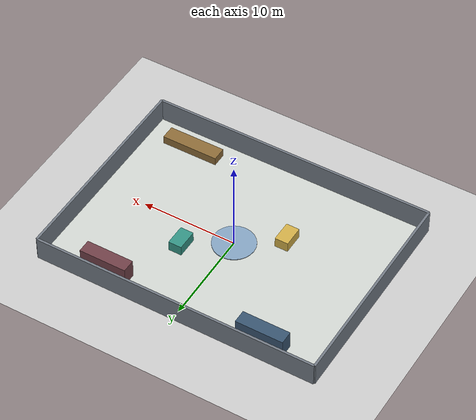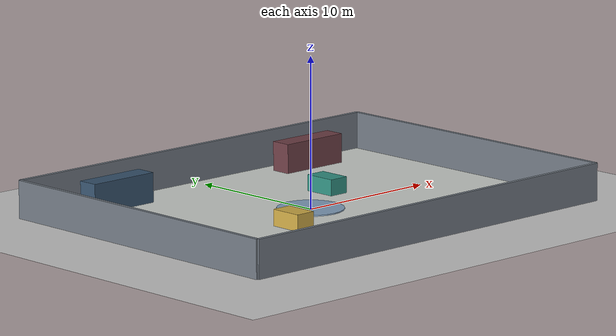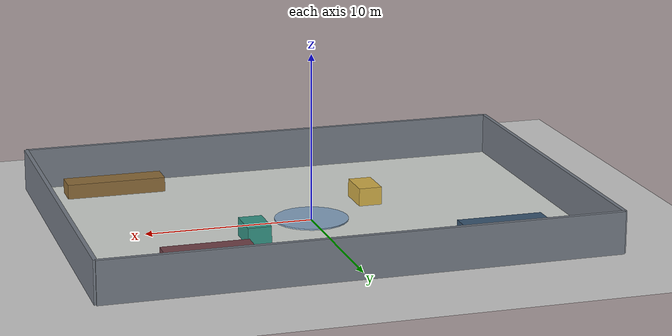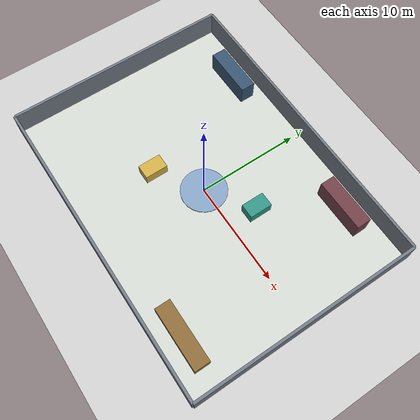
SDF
<?xml version="1.0"?>
<sdf version="1.6">
  <world name="dynamic_nav_mall">
    <include><uri>model://sun</uri></include>
    <include><uri>model://ground_plane</uri></include>
    <scene><ambient>0.58 0.58 0.62 1</ambient><background>0.88 0.9 0.94 1</background></scene>
    <physics type="ode"><max_step_size>0.0025</max_step_size><real_time_update_rate>400</real_time_update_rate></physics>

    <model name="mall_floor">
      <static>true</static>
      <link name="floor">
        <visual name="polished_tile"><geometry><box><size>30 22 0.03</size></box></geometry><material><ambient>0.72 0.74 0.72 1</ambient><diffuse>0.82 0.84 0.82 1</diffuse></material></visual>
        <collision name="collision"><geometry><box><size>30 22 0.03</size></box></geometry></collision>
      </link>
    </model>

    <model name="mall_shell">
      <static>true</static>
      <link name="walls">
        <visual name="north"><pose>0 11 1.25 0 0 0</pose><geometry><box><size>30 0.25 2.5</size></box></geometry><material><diffuse>0.45 0.48 0.52 1</diffuse></material></visual>
        <collision name="north_col"><pose>0 11 1.25 0 0 0</pose><geometry><box><size>30 0.25 2.5</size></box></geometry></collision>
        <visual name="south"><pose>0 -11 1.25 0 0 0</pose><geometry><box><size>30 0.25 2.5</size></box></geometry><material><diffuse>0.45 0.48 0.52 1</diffuse></material></visual>
        <collision name="south_col"><pose>0 -11 1.25 0 0 0</pose><geometry><box><size>30 0.25 2.5</size></box></geometry></collision>
        <visual name="east"><pose>15 0 1.25 0 0 0</pose><geometry><box><size>0.25 22 2.5</size></box></geometry><material><diffuse>0.45 0.48 0.52 1</diffuse></material></visual>
        <collision name="east_col"><pose>15 0 1.25 0 0 0</pose><geometry><box><size>0.25 22 2.5</size></box></geometry></collision>
        <visual name="west"><pose>-15 0 1.25 0 0 0</pose><geometry><box><size>0.25 22 2.5</size></box></geometry><material><diffuse>0.45 0.48 0.52 1</diffuse></material></visual>
        <collision name="west_col"><pose>-15 0 1.25 0 0 0</pose><geometry><box><size>0.25 22 2.5</size></box></geometry></collision>
      </link>
    </model>

    <model name="storefronts_and_clutter">
      <static>true</static>
      <link name="fixtures">
        <visual name="shop_north_west"><pose>-8.5 9.1 1.0 0 0 0</pose><geometry><box><size>5.0 1.4 2.0</size></box></geometry><material><diffuse>0.22 0.33 0.44 1</diffuse></material></visual>
        <collision name="shop_north_west_col"><pose>-8.5 9.1 1.0 0 0 0</pose><geometry><box><size>5.0 1.4 2.0</size></box></geometry></collision>
        <visual name="shop_north_east"><pose>8.5 9.1 1.0 0 0 0</pose><geometry><box><size>5.0 1.4 2.0</size></box></geometry><material><diffuse>0.44 0.25 0.28 1</diffuse></material></visual>
        <collision name="shop_north_east_col"><pose>8.5 9.1 1.0 0 0 0</pose><geometry><box><size>5.0 1.4 2.0</size></box></geometry></collision>
        <visual name="food_court"><pose>10.0 -8.8 0.45 0 0 0</pose><geometry><box><size>6.0 1.5 0.9</size></box></geometry><material><diffuse>0.55 0.42 0.22 1</diffuse></material></visual>
        <collision name="food_court_col"><pose>10.0 -8.8 0.45 0 0 0</pose><geometry><box><size>6.0 1.5 0.9</size></box></geometry></collision>
        <visual name="kiosk_a"><pose>-4.2 -2.8 0.55 0 0 0</pose><geometry><box><size>1.4 2.2 1.1</size></box></geometry><material><diffuse>0.82 0.68 0.28 1</diffuse></material></visual>
        <collision name="kiosk_a_col"><pose>-4.2 -2.8 0.55 0 0 0</pose><geometry><box><size>1.4 2.2 1.1</size></box></geometry></collision>
        <visual name="kiosk_b"><pose>4.2 2.8 0.55 0 0 0</pose><geometry><box><size>1.4 2.2 1.1</size></box></geometry><material><diffuse>0.20 0.58 0.52 1</diffuse></material></visual>
        <collision name="kiosk_b_col"><pose>4.2 2.8 0.55 0 0 0</pose><geometry><box><size>1.4 2.2 1.1</size></box></geometry></collision>
        <visual name="atrium"><pose>0 0 0.08 0 0 0</pose><geometry><cylinder><radius>2.2</radius><length>0.08</length></cylinder></geometry><material><diffuse>0.52 0.64 0.76 1</diffuse></material></visual>
      </link>
    </model>
  </world>
</sdf>
